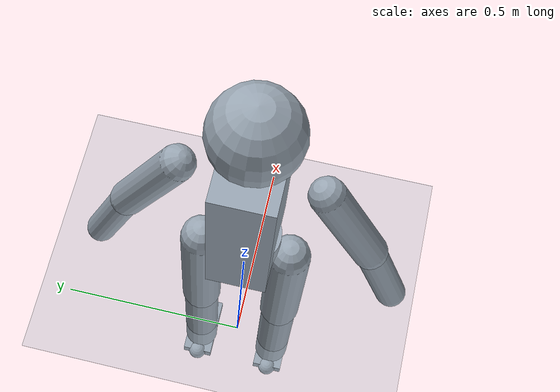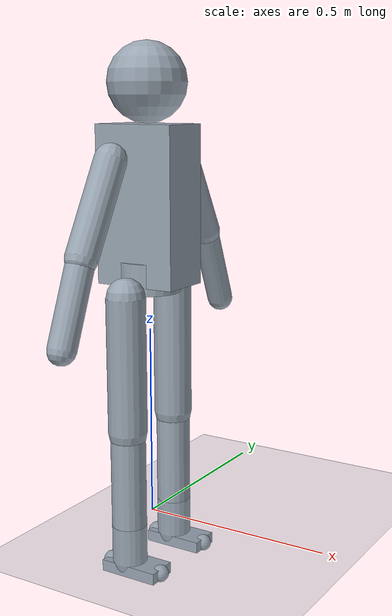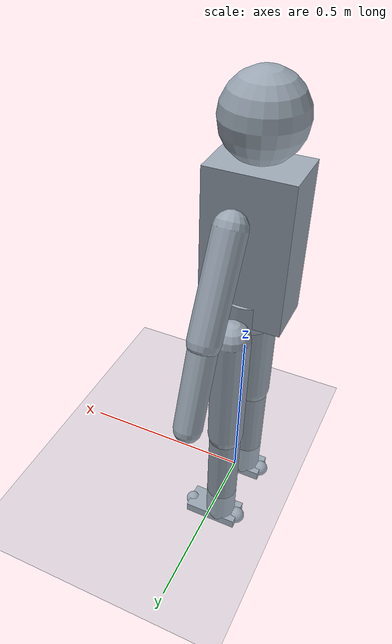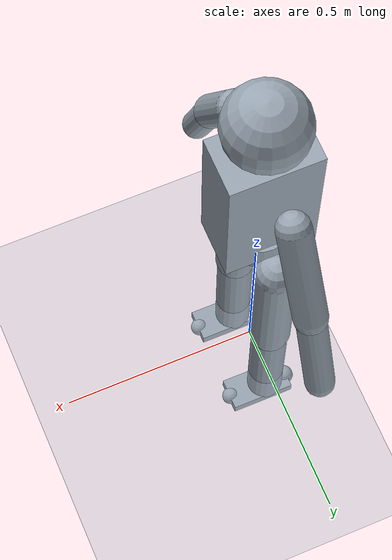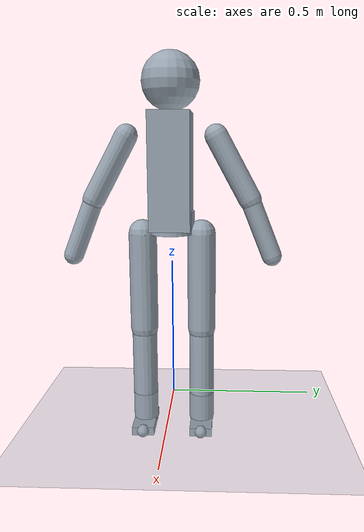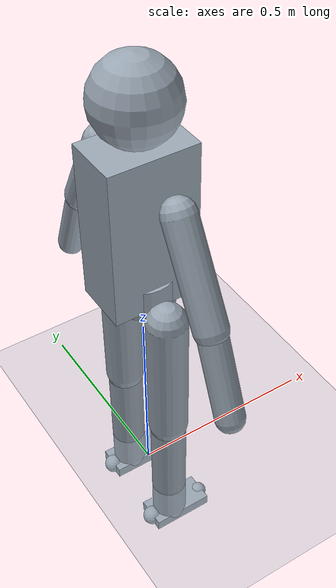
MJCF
<mujoco model="g1_humanoid">

  <compiler angle="radian" autolimits="true"/>

  <option timestep="0.002" gravity="0 0 -9.81" integrator="implicitfast"/>

  <visual>
    <global offwidth="1920" offheight="1080"/>
    <quality shadowsize="4096"/>
  </visual>

  <default>
    <joint limited="true" damping="5.0" armature="0.01" frictionloss="0.1"/>
    <geom contype="1" conaffinity="1" condim="3" friction="0.8 0.005 0.0001"
          rgba="0.6 0.65 0.7 1"/>
  </default>

  <asset>
    <texture name="grid" type="2d" builtin="checker" width="512" height="512"
             rgb1="0.15 0.15 0.18" rgb2="0.20 0.20 0.24"/>
    <material name="grid_mat" texture="grid" texrepeat="8 8" reflectance="0.1"/>
    <material name="body_mat"  rgba="0.60 0.65 0.70 1"/>
    <material name="joint_mat" rgba="0.30 0.30 0.35 1"/>
    <material name="foot_mat"  rgba="0.15 0.15 0.15 1"/>
  </asset>

  <worldbody>
    <!-- Ground plane -->
    <geom name="ground" type="plane" size="10 10 0.01" material="grid_mat"
          contype="1" conaffinity="1"/>
    <light name="main_light" pos="0 0 3" dir="0 0 -1" diffuse="0.8 0.8 0.8"
           specular="0.3 0.3 0.3" castshadow="true"/>

    <!-- ===================== TORSO ===================== -->
    <body name="torso" pos="0 0 0.82">
      <freejoint name="root"/>

      <!-- IMU site for sensors -->
      <site name="torso_imu_site" pos="0 0 0" size="0.01"/>

      <!-- Torso box -->
      <geom name="torso_geom" type="box" size="0.11 0.07 0.20"
            pos="0 0 0" material="body_mat" mass="12.0"/>
      <!-- Head (cosmetic sphere) -->
      <geom name="head_geom" type="sphere" size="0.10"
            pos="0 0 0.30" material="body_mat" mass="2.5"
            contype="0" conaffinity="0"/>

      <!-- ==================== WAIST ==================== -->
      <body name="waist" pos="0 0 -0.18">
        <joint name="waist_yaw" type="hinge" axis="0 0 1"
               range="-0.50 0.50" damping="8.0"/>
        <geom name="waist_geom" type="cylinder" size="0.08 0.04"
              material="joint_mat" mass="2.0"/>

        <!-- ==================== LEFT LEG ==================== -->
        <body name="left_hip" pos="0 0.105 -0.04">
          <joint name="left_hip_yaw" type="hinge" axis="0 0 1"
                 range="-0.52 0.52" damping="5.0"/>
          <geom name="left_hip_yaw_geom" type="sphere" size="0.04"
                material="joint_mat" mass="0.8" contype="0" conaffinity="0"/>

          <body name="left_hip_roll_link" pos="0 0 0">
            <joint name="left_hip_roll" type="hinge" axis="1 0 0"
                   range="-0.52 0.52" damping="5.0"/>
            <geom name="left_hip_roll_geom" type="sphere" size="0.04"
                  material="joint_mat" mass="0.5" contype="0" conaffinity="0"/>

            <body name="left_thigh" pos="0 0 0">
              <joint name="left_hip_pitch" type="hinge" axis="0 1 0"
                     range="-1.57 0.52" damping="8.0"/>
              <geom name="left_thigh_geom" type="capsule" size="0.05"
                    fromto="0 0 0  0 0 -0.35"
                    material="body_mat" mass="4.5"/>

              <body name="left_shin" pos="0 0 -0.35">
                <joint name="left_knee_pitch" type="hinge" axis="0 1 0"
                       range="-0.05 2.35" damping="8.0"/>
                <geom name="left_shin_geom" type="capsule" size="0.045"
                      fromto="0 0 0  0 0 -0.35"
                      material="body_mat" mass="3.5"/>

                <body name="left_ankle_link" pos="0 0 -0.35">
                  <joint name="left_ankle_pitch" type="hinge" axis="0 1 0"
                         range="-0.70 0.52" damping="5.0"/>
                  <geom name="left_ankle_link_geom" type="sphere" size="0.03"
                        material="joint_mat" mass="0.3" contype="0" conaffinity="0"/>

                  <body name="left_foot" pos="0 0 0">
                    <joint name="left_ankle_roll" type="hinge" axis="1 0 0"
                           range="-0.35 0.35" damping="3.0"/>
                    <!-- Foot pad -->
                    <geom name="left_foot_pad" type="box"
                          size="0.08 0.04 0.015" pos="0.02 0 -0.015"
                          material="foot_mat" mass="0.6"/>
                    <!-- Heel sphere -->
                    <geom name="left_foot_heel" type="sphere" size="0.025"
                          pos="-0.055 0 -0.015" material="foot_mat" mass="0.1"/>
                    <!-- Toe sphere -->
                    <geom name="left_foot_toe" type="sphere" size="0.022"
                          pos="0.095 0 -0.015" material="foot_mat" mass="0.1"/>
                    <!-- Foot force site -->
                    <site name="left_foot_site" pos="0.02 0 -0.03" size="0.01"/>
                  </body>
                </body>
              </body>
            </body>
          </body>
        </body>

        <!-- ==================== RIGHT LEG ==================== -->
        <body name="right_hip" pos="0 -0.105 -0.04">
          <joint name="right_hip_yaw" type="hinge" axis="0 0 1"
                 range="-0.52 0.52" damping="5.0"/>
          <geom name="right_hip_yaw_geom" type="sphere" size="0.04"
                material="joint_mat" mass="0.8" contype="0" conaffinity="0"/>

          <body name="right_hip_roll_link" pos="0 0 0">
            <joint name="right_hip_roll" type="hinge" axis="1 0 0"
                   range="-0.52 0.52" damping="5.0"/>
            <geom name="right_hip_roll_geom" type="sphere" size="0.04"
                  material="joint_mat" mass="0.5" contype="0" conaffinity="0"/>

            <body name="right_thigh" pos="0 0 0">
              <joint name="right_hip_pitch" type="hinge" axis="0 1 0"
                     range="-1.57 0.52" damping="8.0"/>
              <geom name="right_thigh_geom" type="capsule" size="0.05"
                    fromto="0 0 0  0 0 -0.35"
                    material="body_mat" mass="4.5"/>

              <body name="right_shin" pos="0 0 -0.35">
                <joint name="right_knee_pitch" type="hinge" axis="0 1 0"
                       range="-0.05 2.35" damping="8.0"/>
                <geom name="right_shin_geom" type="capsule" size="0.045"
                      fromto="0 0 0  0 0 -0.35"
                      material="body_mat" mass="3.5"/>

                <body name="right_ankle_link" pos="0 0 -0.35">
                  <joint name="right_ankle_pitch" type="hinge" axis="0 1 0"
                         range="-0.70 0.52" damping="5.0"/>
                  <geom name="right_ankle_link_geom" type="sphere" size="0.03"
                        material="joint_mat" mass="0.3" contype="0" conaffinity="0"/>

                  <body name="right_foot" pos="0 0 0">
                    <joint name="right_ankle_roll" type="hinge" axis="1 0 0"
                           range="-0.35 0.35" damping="3.0"/>
                    <!-- Foot pad -->
                    <geom name="right_foot_pad" type="box"
                          size="0.08 0.04 0.015" pos="0.02 0 -0.015"
                          material="foot_mat" mass="0.6"/>
                    <!-- Heel sphere -->
                    <geom name="right_foot_heel" type="sphere" size="0.025"
                          pos="-0.055 0 -0.015" material="foot_mat" mass="0.1"/>
                    <!-- Toe sphere -->
                    <geom name="right_foot_toe" type="sphere" size="0.022"
                          pos="0.095 0 -0.015" material="foot_mat" mass="0.1"/>
                    <!-- Foot force site -->
                    <site name="right_foot_site" pos="0.02 0 -0.03" size="0.01"/>
                  </body>
                </body>
              </body>
            </body>
          </body>
        </body>

      </body><!-- /waist -->

      <!-- ==================== LEFT ARM (locked, no joints) ==================== -->
      <body name="left_upper_arm" pos="0 0.155 0.12">
        <geom name="left_upper_arm_geom" type="capsule" size="0.04"
              fromto="0 0 0  0 0.12 -0.22"
              material="body_mat" mass="2.5" contype="0" conaffinity="0"/>
        <body name="left_forearm" pos="0 0.12 -0.22">
          <geom name="left_forearm_geom" type="capsule" size="0.035"
                fromto="0 0 0  0 0.08 -0.20"
                material="body_mat" mass="1.5" contype="0" conaffinity="0"/>
        </body>
      </body>

      <!-- ==================== RIGHT ARM (locked, no joints) ==================== -->
      <body name="right_upper_arm" pos="0 -0.155 0.12">
        <geom name="right_upper_arm_geom" type="capsule" size="0.04"
              fromto="0 0 0  0 -0.12 -0.22"
              material="body_mat" mass="2.5" contype="0" conaffinity="0"/>
        <body name="right_forearm" pos="0 -0.12 -0.22">
          <geom name="right_forearm_geom" type="capsule" size="0.035"
                fromto="0 0 0  0 -0.08 -0.20"
                material="body_mat" mass="1.5" contype="0" conaffinity="0"/>
        </body>
      </body>

    </body><!-- /torso -->
  </worldbody>

  <!-- ===================== ACTUATORS ===================== -->
  <!--
    General position-servo actuators.
    tau = kp*(ctrl - qpos) - kd*qvel  implemented via:
      gainprm = kp
      biasprm = [0, -kp, -kd]
  -->
  <actuator>
    <!-- Waist -->
    <general name="waist_yaw_act"       joint="waist_yaw"
             gaintype="fixed" gainprm="200"
             biastype="affine" biasprm="0 -200 -20"
             ctrlrange="-0.50 0.50"/>

    <!-- Left Leg -->
    <general name="left_hip_yaw_act"    joint="left_hip_yaw"
             gaintype="fixed" gainprm="200"
             biastype="affine" biasprm="0 -200 -20"
             ctrlrange="-0.52 0.52"/>
    <general name="left_hip_roll_act"   joint="left_hip_roll"
             gaintype="fixed" gainprm="200"
             biastype="affine" biasprm="0 -200 -20"
             ctrlrange="-0.52 0.52"/>
    <general name="left_hip_pitch_act"  joint="left_hip_pitch"
             gaintype="fixed" gainprm="300"
             biastype="affine" biasprm="0 -300 -30"
             ctrlrange="-1.57 0.52"/>
    <general name="left_knee_pitch_act" joint="left_knee_pitch"
             gaintype="fixed" gainprm="300"
             biastype="affine" biasprm="0 -300 -30"
             ctrlrange="-0.05 2.35"/>
    <general name="left_ankle_pitch_act" joint="left_ankle_pitch"
             gaintype="fixed" gainprm="150"
             biastype="affine" biasprm="0 -150 -15"
             ctrlrange="-0.70 0.52"/>
    <general name="left_ankle_roll_act" joint="left_ankle_roll"
             gaintype="fixed" gainprm="80"
             biastype="affine" biasprm="0 -80 -8"
             ctrlrange="-0.35 0.35"/>

    <!-- Right Leg -->
    <general name="right_hip_yaw_act"    joint="right_hip_yaw"
             gaintype="fixed" gainprm="200"
             biastype="affine" biasprm="0 -200 -20"
             ctrlrange="-0.52 0.52"/>
    <general name="right_hip_roll_act"   joint="right_hip_roll"
             gaintype="fixed" gainprm="200"
             biastype="affine" biasprm="0 -200 -20"
             ctrlrange="-0.52 0.52"/>
    <general name="right_hip_pitch_act"  joint="right_hip_pitch"
             gaintype="fixed" gainprm="300"
             biastype="affine" biasprm="0 -300 -30"
             ctrlrange="-1.57 0.52"/>
    <general name="right_knee_pitch_act" joint="right_knee_pitch"
             gaintype="fixed" gainprm="300"
             biastype="affine" biasprm="0 -300 -30"
             ctrlrange="-0.05 2.35"/>
    <general name="right_ankle_pitch_act" joint="right_ankle_pitch"
             gaintype="fixed" gainprm="150"
             biastype="affine" biasprm="0 -150 -15"
             ctrlrange="-0.70 0.52"/>
    <general name="right_ankle_roll_act" joint="right_ankle_roll"
             gaintype="fixed" gainprm="80"
             biastype="affine" biasprm="0 -80 -8"
             ctrlrange="-0.35 0.35"/>
  </actuator>

  <!-- ===================== SENSORS ===================== -->
  <sensor>
    <accelerometer name="torso_accel" site="torso_imu_site"/>
    <gyro          name="torso_gyro"  site="torso_imu_site"/>
    <force         name="left_foot_force"  site="left_foot_site"/>
    <force         name="right_foot_force" site="right_foot_site"/>
  </sensor>

</mujoco>
